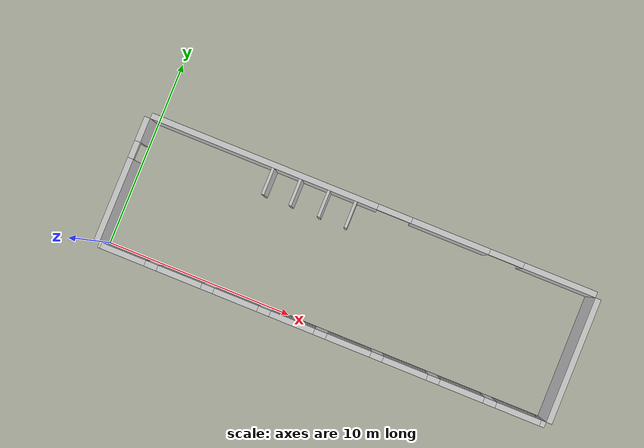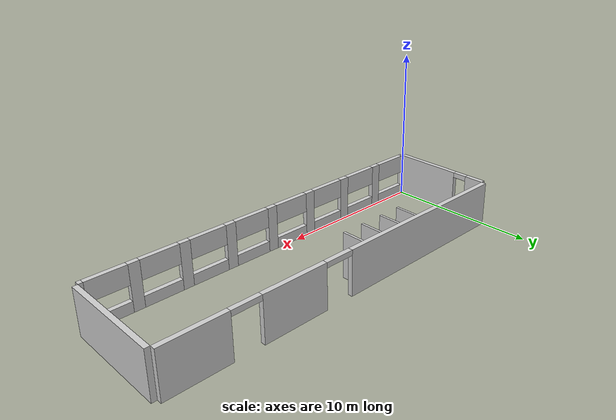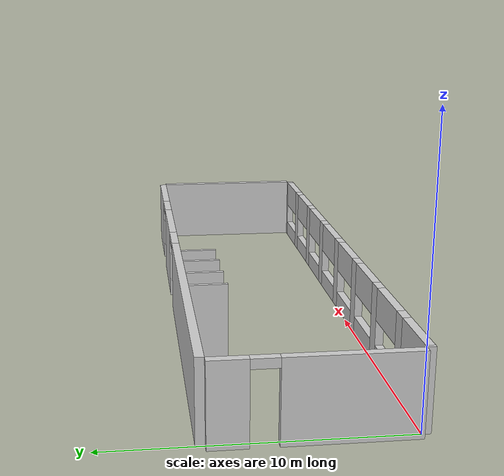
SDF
<?xml version="1.0" ?>
<sdf version="1.9">
  <model name="room_427">
    <static>true</static>
    <link name="walls">
      <collision name="top_solid_1_collision">
        <pose>6.0960 6.7818 1.4351 0 0 0</pose>
        <geometry>
          <box>
            <size>12.1920 0.3048 2.8702</size>
          </box>
        </geometry>
      </collision>
      <visual name="top_solid_1_visual">
        <pose>6.0960 6.7818 1.4351 0 0 0</pose>
        <geometry>
          <box>
            <size>12.1920 0.3048 2.8702</size>
          </box>
        </geometry>
        <material>
          <ambient>0.82 0.82 0.82 1</ambient>
          <diffuse>0.82 0.82 0.82 1</diffuse>
        </material>
      </visual>

      <collision name="top_door_1_lintel_collision">
        <pose>13.1064 6.7818 2.7051 0 0 0</pose>
        <geometry>
          <box>
            <size>1.8288 0.3048 0.3302</size>
          </box>
        </geometry>
      </collision>
      <visual name="top_door_1_lintel_visual">
        <pose>13.1064 6.7818 2.7051 0 0 0</pose>
        <geometry>
          <box>
            <size>1.8288 0.3048 0.3302</size>
          </box>
        </geometry>
        <material>
          <ambient>0.82 0.82 0.82 1</ambient>
          <diffuse>0.82 0.82 0.82 1</diffuse>
        </material>
      </visual>

      <collision name="top_solid_2_collision">
        <pose>16.1036 6.7818 1.4351 0 0 0</pose>
        <geometry>
          <box>
            <size>4.1656 0.3048 2.8702</size>
          </box>
        </geometry>
      </collision>
      <visual name="top_solid_2_visual">
        <pose>16.1036 6.7818 1.4351 0 0 0</pose>
        <geometry>
          <box>
            <size>4.1656 0.3048 2.8702</size>
          </box>
        </geometry>
        <material>
          <ambient>0.82 0.82 0.82 1</ambient>
          <diffuse>0.82 0.82 0.82 1</diffuse>
        </material>
      </visual>

      <collision name="top_door_2_lintel_collision">
        <pose>19.1008 6.7818 2.7051 0 0 0</pose>
        <geometry>
          <box>
            <size>1.8288 0.3048 0.3302</size>
          </box>
        </geometry>
      </collision>
      <visual name="top_door_2_lintel_visual">
        <pose>19.1008 6.7818 2.7051 0 0 0</pose>
        <geometry>
          <box>
            <size>1.8288 0.3048 0.3302</size>
          </box>
        </geometry>
        <material>
          <ambient>0.82 0.82 0.82 1</ambient>
          <diffuse>0.82 0.82 0.82 1</diffuse>
        </material>
      </visual>

      <collision name="top_solid_3_collision">
        <pose>21.9583 6.7818 1.4351 0 0 0</pose>
        <geometry>
          <box>
            <size>3.8862 0.3048 2.8702</size>
          </box>
        </geometry>
      </collision>
      <visual name="top_solid_3_visual">
        <pose>21.9583 6.7818 1.4351 0 0 0</pose>
        <geometry>
          <box>
            <size>3.8862 0.3048 2.8702</size>
          </box>
        </geometry>
        <material>
          <ambient>0.82 0.82 0.82 1</ambient>
          <diffuse>0.82 0.82 0.82 1</diffuse>
        </material>
      </visual>

      <collision name="top_protrusion_1_collision">
        <pose>6.6294 5.9182 1.4351 0 0 0</pose>
        <geometry>
          <box>
            <size>0.1524 1.4224 2.8702</size>
          </box>
        </geometry>
      </collision>
      <visual name="top_protrusion_1_visual">
        <pose>6.6294 5.9182 1.4351 0 0 0</pose>
        <geometry>
          <box>
            <size>0.1524 1.4224 2.8702</size>
          </box>
        </geometry>
        <material>
          <ambient>0.82 0.82 0.82 1</ambient>
          <diffuse>0.82 0.82 0.82 1</diffuse>
        </material>
      </visual>

      <collision name="top_protrusion_2_collision">
        <pose>8.1026 5.9182 1.4351 0 0 0</pose>
        <geometry>
          <box>
            <size>0.1524 1.4224 2.8702</size>
          </box>
        </geometry>
      </collision>
      <visual name="top_protrusion_2_visual">
        <pose>8.1026 5.9182 1.4351 0 0 0</pose>
        <geometry>
          <box>
            <size>0.1524 1.4224 2.8702</size>
          </box>
        </geometry>
        <material>
          <ambient>0.82 0.82 0.82 1</ambient>
          <diffuse>0.82 0.82 0.82 1</diffuse>
        </material>
      </visual>

      <collision name="top_protrusion_3_collision">
        <pose>9.6266 5.9182 1.4351 0 0 0</pose>
        <geometry>
          <box>
            <size>0.1524 1.4224 2.8702</size>
          </box>
        </geometry>
      </collision>
      <visual name="top_protrusion_3_visual">
        <pose>9.6266 5.9182 1.4351 0 0 0</pose>
        <geometry>
          <box>
            <size>0.1524 1.4224 2.8702</size>
          </box>
        </geometry>
        <material>
          <ambient>0.82 0.82 0.82 1</ambient>
          <diffuse>0.82 0.82 0.82 1</diffuse>
        </material>
      </visual>

      <collision name="top_protrusion_4_collision">
        <pose>11.0744 5.9182 1.4351 0 0 0</pose>
        <geometry>
          <box>
            <size>0.1524 1.4224 2.8702</size>
          </box>
        </geometry>
      </collision>
      <visual name="top_protrusion_4_visual">
        <pose>11.0744 5.9182 1.4351 0 0 0</pose>
        <geometry>
          <box>
            <size>0.1524 1.4224 2.8702</size>
          </box>
        </geometry>
        <material>
          <ambient>0.82 0.82 0.82 1</ambient>
          <diffuse>0.82 0.82 0.82 1</diffuse>
        </material>
      </visual>

      <collision name="bottom_left_end_full_collision">
        <pose>0.0635 -0.1524 1.4351 0 0 0</pose>
        <geometry>
          <box>
            <size>0.1270 0.3048 2.8702</size>
          </box>
        </geometry>
      </collision>
      <visual name="bottom_left_end_full_visual">
        <pose>0.0635 -0.1524 1.4351 0 0 0</pose>
        <geometry>
          <box>
            <size>0.1270 0.3048 2.8702</size>
          </box>
        </geometry>
        <material>
          <ambient>0.82 0.82 0.82 1</ambient>
          <diffuse>0.82 0.82 0.82 1</diffuse>
        </material>
      </visual>

      <collision name="bottom_window_1_lower_collision">
        <pose>1.3081 -0.1524 0.3429 0 0 0</pose>
        <geometry>
          <box>
            <size>2.3622 0.3048 0.6858</size>
          </box>
        </geometry>
      </collision>
      <visual name="bottom_window_1_lower_visual">
        <pose>1.3081 -0.1524 0.3429 0 0 0</pose>
        <geometry>
          <box>
            <size>2.3622 0.3048 0.6858</size>
          </box>
        </geometry>
        <material>
          <ambient>0.82 0.82 0.82 1</ambient>
          <diffuse>0.82 0.82 0.82 1</diffuse>
        </material>
      </visual>

      <collision name="bottom_window_1_upper_collision">
        <pose>1.3081 -0.1524 2.2606 0 0 0</pose>
        <geometry>
          <box>
            <size>2.3622 0.3048 1.2192</size>
          </box>
        </geometry>
      </collision>
      <visual name="bottom_window_1_upper_visual">
        <pose>1.3081 -0.1524 2.2606 0 0 0</pose>
        <geometry>
          <box>
            <size>2.3622 0.3048 1.2192</size>
          </box>
        </geometry>
        <material>
          <ambient>0.82 0.82 0.82 1</ambient>
          <diffuse>0.82 0.82 0.82 1</diffuse>
        </material>
      </visual>

      <collision name="bottom_gap_1_full_collision">
        <pose>2.8194 -0.1524 1.4351 0 0 0</pose>
        <geometry>
          <box>
            <size>0.6604 0.3048 2.8702</size>
          </box>
        </geometry>
      </collision>
      <visual name="bottom_gap_1_full_visual">
        <pose>2.8194 -0.1524 1.4351 0 0 0</pose>
        <geometry>
          <box>
            <size>0.6604 0.3048 2.8702</size>
          </box>
        </geometry>
        <material>
          <ambient>0.82 0.82 0.82 1</ambient>
          <diffuse>0.82 0.82 0.82 1</diffuse>
        </material>
      </visual>

      <collision name="bottom_window_2_lower_collision">
        <pose>4.3307 -0.1524 0.3429 0 0 0</pose>
        <geometry>
          <box>
            <size>2.3622 0.3048 0.6858</size>
          </box>
        </geometry>
      </collision>
      <visual name="bottom_window_2_lower_visual">
        <pose>4.3307 -0.1524 0.3429 0 0 0</pose>
        <geometry>
          <box>
            <size>2.3622 0.3048 0.6858</size>
          </box>
        </geometry>
        <material>
          <ambient>0.82 0.82 0.82 1</ambient>
          <diffuse>0.82 0.82 0.82 1</diffuse>
        </material>
      </visual>

      <collision name="bottom_window_2_upper_collision">
        <pose>4.3307 -0.1524 2.2606 0 0 0</pose>
        <geometry>
          <box>
            <size>2.3622 0.3048 1.2192</size>
          </box>
        </geometry>
      </collision>
      <visual name="bottom_window_2_upper_visual">
        <pose>4.3307 -0.1524 2.2606 0 0 0</pose>
        <geometry>
          <box>
            <size>2.3622 0.3048 1.2192</size>
          </box>
        </geometry>
        <material>
          <ambient>0.82 0.82 0.82 1</ambient>
          <diffuse>0.82 0.82 0.82 1</diffuse>
        </material>
      </visual>

      <collision name="bottom_gap_2_full_collision">
        <pose>5.8420 -0.1524 1.4351 0 0 0</pose>
        <geometry>
          <box>
            <size>0.6604 0.3048 2.8702</size>
          </box>
        </geometry>
      </collision>
      <visual name="bottom_gap_2_full_visual">
        <pose>5.8420 -0.1524 1.4351 0 0 0</pose>
        <geometry>
          <box>
            <size>0.6604 0.3048 2.8702</size>
          </box>
        </geometry>
        <material>
          <ambient>0.82 0.82 0.82 1</ambient>
          <diffuse>0.82 0.82 0.82 1</diffuse>
        </material>
      </visual>

      <collision name="bottom_window_3_lower_collision">
        <pose>7.3533 -0.1524 0.3429 0 0 0</pose>
        <geometry>
          <box>
            <size>2.3622 0.3048 0.6858</size>
          </box>
        </geometry>
      </collision>
      <visual name="bottom_window_3_lower_visual">
        <pose>7.3533 -0.1524 0.3429 0 0 0</pose>
        <geometry>
          <box>
            <size>2.3622 0.3048 0.6858</size>
          </box>
        </geometry>
        <material>
          <ambient>0.82 0.82 0.82 1</ambient>
          <diffuse>0.82 0.82 0.82 1</diffuse>
        </material>
      </visual>

      <collision name="bottom_window_3_upper_collision">
        <pose>7.3533 -0.1524 2.2606 0 0 0</pose>
        <geometry>
          <box>
            <size>2.3622 0.3048 1.2192</size>
          </box>
        </geometry>
      </collision>
      <visual name="bottom_window_3_upper_visual">
        <pose>7.3533 -0.1524 2.2606 0 0 0</pose>
        <geometry>
          <box>
            <size>2.3622 0.3048 1.2192</size>
          </box>
        </geometry>
        <material>
          <ambient>0.82 0.82 0.82 1</ambient>
          <diffuse>0.82 0.82 0.82 1</diffuse>
        </material>
      </visual>

      <collision name="bottom_gap_3_full_collision">
        <pose>8.8646 -0.1524 1.4351 0 0 0</pose>
        <geometry>
          <box>
            <size>0.6604 0.3048 2.8702</size>
          </box>
        </geometry>
      </collision>
      <visual name="bottom_gap_3_full_visual">
        <pose>8.8646 -0.1524 1.4351 0 0 0</pose>
        <geometry>
          <box>
            <size>0.6604 0.3048 2.8702</size>
          </box>
        </geometry>
        <material>
          <ambient>0.82 0.82 0.82 1</ambient>
          <diffuse>0.82 0.82 0.82 1</diffuse>
        </material>
      </visual>

      <collision name="bottom_window_4_lower_collision">
        <pose>10.3759 -0.1524 0.3429 0 0 0</pose>
        <geometry>
          <box>
            <size>2.3622 0.3048 0.6858</size>
          </box>
        </geometry>
      </collision>
      <visual name="bottom_window_4_lower_visual">
        <pose>10.3759 -0.1524 0.3429 0 0 0</pose>
        <geometry>
          <box>
            <size>2.3622 0.3048 0.6858</size>
          </box>
        </geometry>
        <material>
          <ambient>0.82 0.82 0.82 1</ambient>
          <diffuse>0.82 0.82 0.82 1</diffuse>
        </material>
      </visual>

      <collision name="bottom_window_4_upper_collision">
        <pose>10.3759 -0.1524 2.2606 0 0 0</pose>
        <geometry>
          <box>
            <size>2.3622 0.3048 1.2192</size>
          </box>
        </geometry>
      </collision>
      <visual name="bottom_window_4_upper_visual">
        <pose>10.3759 -0.1524 2.2606 0 0 0</pose>
        <geometry>
          <box>
            <size>2.3622 0.3048 1.2192</size>
          </box>
        </geometry>
        <material>
          <ambient>0.82 0.82 0.82 1</ambient>
          <diffuse>0.82 0.82 0.82 1</diffuse>
        </material>
      </visual>

      <collision name="bottom_gap_4_full_collision">
        <pose>11.8872 -0.1524 1.4351 0 0 0</pose>
        <geometry>
          <box>
            <size>0.6604 0.3048 2.8702</size>
          </box>
        </geometry>
      </collision>
      <visual name="bottom_gap_4_full_visual">
        <pose>11.8872 -0.1524 1.4351 0 0 0</pose>
        <geometry>
          <box>
            <size>0.6604 0.3048 2.8702</size>
          </box>
        </geometry>
        <material>
          <ambient>0.82 0.82 0.82 1</ambient>
          <diffuse>0.82 0.82 0.82 1</diffuse>
        </material>
      </visual>

      <collision name="bottom_window_5_lower_collision">
        <pose>13.3985 -0.1524 0.3429 0 0 0</pose>
        <geometry>
          <box>
            <size>2.3622 0.3048 0.6858</size>
          </box>
        </geometry>
      </collision>
      <visual name="bottom_window_5_lower_visual">
        <pose>13.3985 -0.1524 0.3429 0 0 0</pose>
        <geometry>
          <box>
            <size>2.3622 0.3048 0.6858</size>
          </box>
        </geometry>
        <material>
          <ambient>0.82 0.82 0.82 1</ambient>
          <diffuse>0.82 0.82 0.82 1</diffuse>
        </material>
      </visual>

      <collision name="bottom_window_5_upper_collision">
        <pose>13.3985 -0.1524 2.2606 0 0 0</pose>
        <geometry>
          <box>
            <size>2.3622 0.3048 1.2192</size>
          </box>
        </geometry>
      </collision>
      <visual name="bottom_window_5_upper_visual">
        <pose>13.3985 -0.1524 2.2606 0 0 0</pose>
        <geometry>
          <box>
            <size>2.3622 0.3048 1.2192</size>
          </box>
        </geometry>
        <material>
          <ambient>0.82 0.82 0.82 1</ambient>
          <diffuse>0.82 0.82 0.82 1</diffuse>
        </material>
      </visual>

      <collision name="bottom_gap_5_full_collision">
        <pose>14.9098 -0.1524 1.4351 0 0 0</pose>
        <geometry>
          <box>
            <size>0.6604 0.3048 2.8702</size>
          </box>
        </geometry>
      </collision>
      <visual name="bottom_gap_5_full_visual">
        <pose>14.9098 -0.1524 1.4351 0 0 0</pose>
        <geometry>
          <box>
            <size>0.6604 0.3048 2.8702</size>
          </box>
        </geometry>
        <material>
          <ambient>0.82 0.82 0.82 1</ambient>
          <diffuse>0.82 0.82 0.82 1</diffuse>
        </material>
      </visual>

      <collision name="bottom_window_6_lower_collision">
        <pose>16.4211 -0.1524 0.3429 0 0 0</pose>
        <geometry>
          <box>
            <size>2.3622 0.3048 0.6858</size>
          </box>
        </geometry>
      </collision>
      <visual name="bottom_window_6_lower_visual">
        <pose>16.4211 -0.1524 0.3429 0 0 0</pose>
        <geometry>
          <box>
            <size>2.3622 0.3048 0.6858</size>
          </box>
        </geometry>
        <material>
          <ambient>0.82 0.82 0.82 1</ambient>
          <diffuse>0.82 0.82 0.82 1</diffuse>
        </material>
      </visual>

      <collision name="bottom_window_6_upper_collision">
        <pose>16.4211 -0.1524 2.2606 0 0 0</pose>
        <geometry>
          <box>
            <size>2.3622 0.3048 1.2192</size>
          </box>
        </geometry>
      </collision>
      <visual name="bottom_window_6_upper_visual">
        <pose>16.4211 -0.1524 2.2606 0 0 0</pose>
        <geometry>
          <box>
            <size>2.3622 0.3048 1.2192</size>
          </box>
        </geometry>
        <material>
          <ambient>0.82 0.82 0.82 1</ambient>
          <diffuse>0.82 0.82 0.82 1</diffuse>
        </material>
      </visual>

      <collision name="bottom_gap_6_full_collision">
        <pose>17.9324 -0.1524 1.4351 0 0 0</pose>
        <geometry>
          <box>
            <size>0.6604 0.3048 2.8702</size>
          </box>
        </geometry>
      </collision>
      <visual name="bottom_gap_6_full_visual">
        <pose>17.9324 -0.1524 1.4351 0 0 0</pose>
        <geometry>
          <box>
            <size>0.6604 0.3048 2.8702</size>
          </box>
        </geometry>
        <material>
          <ambient>0.82 0.82 0.82 1</ambient>
          <diffuse>0.82 0.82 0.82 1</diffuse>
        </material>
      </visual>

      <collision name="bottom_window_7_lower_collision">
        <pose>19.4437 -0.1524 0.3429 0 0 0</pose>
        <geometry>
          <box>
            <size>2.3622 0.3048 0.6858</size>
          </box>
        </geometry>
      </collision>
      <visual name="bottom_window_7_lower_visual">
        <pose>19.4437 -0.1524 0.3429 0 0 0</pose>
        <geometry>
          <box>
            <size>2.3622 0.3048 0.6858</size>
          </box>
        </geometry>
        <material>
          <ambient>0.82 0.82 0.82 1</ambient>
          <diffuse>0.82 0.82 0.82 1</diffuse>
        </material>
      </visual>

      <collision name="bottom_window_7_upper_collision">
        <pose>19.4437 -0.1524 2.2606 0 0 0</pose>
        <geometry>
          <box>
            <size>2.3622 0.3048 1.2192</size>
          </box>
        </geometry>
      </collision>
      <visual name="bottom_window_7_upper_visual">
        <pose>19.4437 -0.1524 2.2606 0 0 0</pose>
        <geometry>
          <box>
            <size>2.3622 0.3048 1.2192</size>
          </box>
        </geometry>
        <material>
          <ambient>0.82 0.82 0.82 1</ambient>
          <diffuse>0.82 0.82 0.82 1</diffuse>
        </material>
      </visual>

      <collision name="bottom_gap_7_full_collision">
        <pose>20.9550 -0.1524 1.4351 0 0 0</pose>
        <geometry>
          <box>
            <size>0.6604 0.3048 2.8702</size>
          </box>
        </geometry>
      </collision>
      <visual name="bottom_gap_7_full_visual">
        <pose>20.9550 -0.1524 1.4351 0 0 0</pose>
        <geometry>
          <box>
            <size>0.6604 0.3048 2.8702</size>
          </box>
        </geometry>
        <material>
          <ambient>0.82 0.82 0.82 1</ambient>
          <diffuse>0.82 0.82 0.82 1</diffuse>
        </material>
      </visual>

      <collision name="bottom_window_8_lower_collision">
        <pose>22.4663 -0.1524 0.3429 0 0 0</pose>
        <geometry>
          <box>
            <size>2.3622 0.3048 0.6858</size>
          </box>
        </geometry>
      </collision>
      <visual name="bottom_window_8_lower_visual">
        <pose>22.4663 -0.1524 0.3429 0 0 0</pose>
        <geometry>
          <box>
            <size>2.3622 0.3048 0.6858</size>
          </box>
        </geometry>
        <material>
          <ambient>0.82 0.82 0.82 1</ambient>
          <diffuse>0.82 0.82 0.82 1</diffuse>
        </material>
      </visual>

      <collision name="bottom_window_8_upper_collision">
        <pose>22.4663 -0.1524 2.2606 0 0 0</pose>
        <geometry>
          <box>
            <size>2.3622 0.3048 1.2192</size>
          </box>
        </geometry>
      </collision>
      <visual name="bottom_window_8_upper_visual">
        <pose>22.4663 -0.1524 2.2606 0 0 0</pose>
        <geometry>
          <box>
            <size>2.3622 0.3048 1.2192</size>
          </box>
        </geometry>
        <material>
          <ambient>0.82 0.82 0.82 1</ambient>
          <diffuse>0.82 0.82 0.82 1</diffuse>
        </material>
      </visual>

      <collision name="bottom_right_end_full_collision">
        <pose>23.7744 -0.1524 1.4351 0 0 0</pose>
        <geometry>
          <box>
            <size>0.2540 0.3048 2.8702</size>
          </box>
        </geometry>
      </collision>
      <visual name="bottom_right_end_full_visual">
        <pose>23.7744 -0.1524 1.4351 0 0 0</pose>
        <geometry>
          <box>
            <size>0.2540 0.3048 2.8702</size>
          </box>
        </geometry>
        <material>
          <ambient>0.82 0.82 0.82 1</ambient>
          <diffuse>0.82 0.82 0.82 1</diffuse>
        </material>
      </visual>

      <collision name="left_solid_1_collision">
        <pose>-0.1524 2.2098 1.4351 0 0 0</pose>
        <geometry>
          <box>
            <size>0.3048 4.4196 2.8702</size>
          </box>
        </geometry>
      </collision>
      <visual name="left_solid_1_visual">
        <pose>-0.1524 2.2098 1.4351 0 0 0</pose>
        <geometry>
          <box>
            <size>0.3048 4.4196 2.8702</size>
          </box>
        </geometry>
        <material>
          <ambient>0.82 0.82 0.82 1</ambient>
          <diffuse>0.82 0.82 0.82 1</diffuse>
        </material>
      </visual>

      <collision name="left_door_1_lintel_collision">
        <pose>-0.1524 4.8768 2.7051 0 0 0</pose>
        <geometry>
          <box>
            <size>0.3048 0.9144 0.3302</size>
          </box>
        </geometry>
      </collision>
      <visual name="left_door_1_lintel_visual">
        <pose>-0.1524 4.8768 2.7051 0 0 0</pose>
        <geometry>
          <box>
            <size>0.3048 0.9144 0.3302</size>
          </box>
        </geometry>
        <material>
          <ambient>0.82 0.82 0.82 1</ambient>
          <diffuse>0.82 0.82 0.82 1</diffuse>
        </material>
      </visual>

      <collision name="left_solid_2_collision">
        <pose>-0.1524 5.9817 1.4351 0 0 0</pose>
        <geometry>
          <box>
            <size>0.3048 1.2954 2.8702</size>
          </box>
        </geometry>
      </collision>
      <visual name="left_solid_2_visual">
        <pose>-0.1524 5.9817 1.4351 0 0 0</pose>
        <geometry>
          <box>
            <size>0.3048 1.2954 2.8702</size>
          </box>
        </geometry>
        <material>
          <ambient>0.82 0.82 0.82 1</ambient>
          <diffuse>0.82 0.82 0.82 1</diffuse>
        </material>
      </visual>

      <collision name="right_wall_full_collision">
        <pose>24.0538 3.3147 1.4351 0 0 0</pose>
        <geometry>
          <box>
            <size>0.3048 6.6294 2.8702</size>
          </box>
        </geometry>
      </collision>
      <visual name="right_wall_full_visual">
        <pose>24.0538 3.3147 1.4351 0 0 0</pose>
        <geometry>
          <box>
            <size>0.3048 6.6294 2.8702</size>
          </box>
        </geometry>
        <material>
          <ambient>0.82 0.82 0.82 1</ambient>
          <diffuse>0.82 0.82 0.82 1</diffuse>
        </material>
      </visual>
    </link>
  </model>
</sdf>
